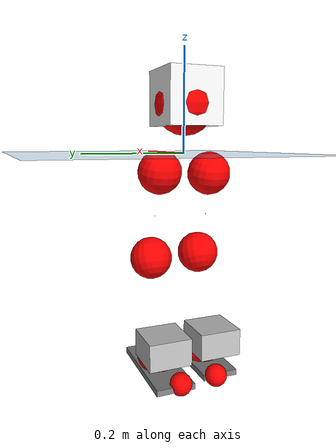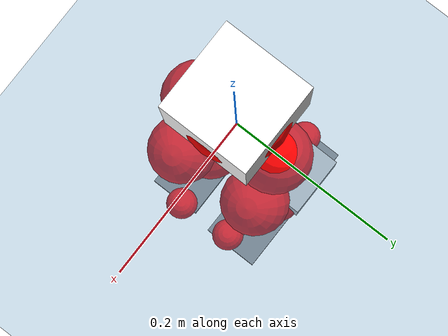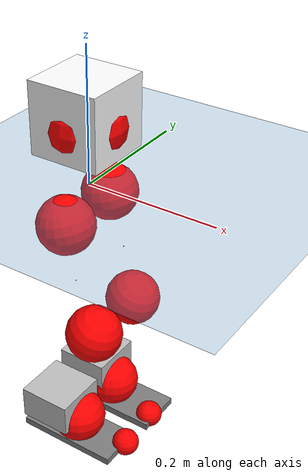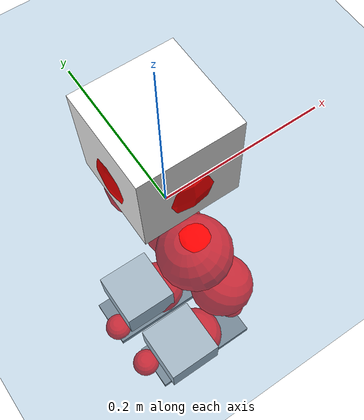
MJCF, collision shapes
<mujoco model="pi_12dof_release_v1">
  <compiler angle="radian" assetdir="assets" balanceinertia="true" inertiafromgeom="false"/>

  <option timestep="0.005" density="1.2" viscosity="2e-05"/>

  <size nkey="1"/>

  <visual>
    <quality shadowsize="8192"/>
    <map shadowclip="0.5"/>
  </visual>

  <default>
    <default class="/">
      <joint armature="0.01" damping="0.01" frictionloss="0.01"/>
      <geom contype="0" conaffinity="0" group="1" solref="-1000 -80"/>
      <site size="0.01 0.005 0.005" group="5"/>
      <general forcelimited="true" biastype="affine" gainprm="20" biasprm="0 -20 -0.5"/>
      <default class="foot">
        <geom size="0.0845 0.036 0.005" type="box" condim="6" group="4" priority="1" friction="0.9 0.2 0.2" solimp="0.015 1 0.005"/>
      </default>
      <default class="reward_collision_sphere">
        <geom group="5" rgba="1 0 0 1"/>
      </default>
    </default>
  </default>

  <asset>
    <texture type="skybox" colorspace="auto" name="//unnamed_texture_0" builtin="gradient" rgb1="0.95 0.95 0.95" rgb2="0.95 0.95 0.95" width="100" height="600"/>
    <texture type="2d" colorspace="auto" name="texplane" builtin="checker" rgb1="0.345 0.575 0.748" rgb2="0.345 0.575 0.748" markrgb="1 1 1" width="512" height="512"/>
    <material name="MatPlane" class="/" texture="texplane" texuniform="true" texrepeat="2 2" specular="0.9"/>
    <mesh name="baselink_1" class="/" file="baselink_1.STL"/>
    <mesh name="r_hip_pitch_link" class="/" file="r_hip_pitch_link.STL"/>
    <mesh name="r_hip_roll_link" class="/" file="r_hip_roll_link.STL"/>
    <mesh name="r_thigh_link" class="/" file="r_thigh_link.STL"/>
    <mesh name="r_calf_link" class="/" file="r_calf_link.STL"/>
    <mesh name="r_ankle_pitch_link" class="/" file="r_ankle_pitch_link.STL"/>
    <mesh name="r_ankle_roll_link" class="/" file="r_ankle_roll_link.STL"/>
    <mesh name="l_hip_pitch_link" class="/" file="l_hip_pitch_link.STL"/>
    <mesh name="l_hip_roll_link" class="/" file="l_hip_roll_link.STL"/>
    <mesh name="l_thigh_link" class="/" file="l_thigh_link.STL"/>
    <mesh name="l_calf_link" class="/" file="l_calf_link.STL"/>
    <mesh name="l_ankle_pitch_link" class="/" file="l_ankle_pitch_link.STL"/>
    <mesh name="l_ankle_roll_link" class="/" file="l_ankle_roll_link.STL"/>
  </asset>

  <worldbody>
    <geom name="floor" class="/" size="100 100 0.125" type="plane" group="0" material="MatPlane"/>
    <light name="toplight_shadow" class="/" pos="0 0 5" dir="0.0990148 0.0990148 -0.990148" type="directional" ambient="0.04 0.04 0.04" diffuse="0.55 0.55 0.55" specular="0.12 0.12 0.12"/>
    <light name="toplight_fill" class="/" pos="0 0 5" dir="0.0990148 0.0990148 -0.990148" type="directional" castshadow="false" ambient="0.04 0.04 0.04" diffuse="0.3 0.3 0.3" specular="0.08 0.08 0.08"/>
    <body name="trunk" pos="-0.0023292 -0.0006725 0.00183261" quat="1 -0.000405432 -0.000347078 -0.000120815">
      <inertial pos="0.00927975 0.00318854 0.0505532" quat="0.686602 0.0111957 0.00963154 0.726883" mass="2.4288" diaginertia="0.0297083 0.000978294 0.0150807"/>
      <joint name="//unnamed_joint_0" type="free"/>
      <geom name="//unnamed_geom_1" class="/" type="mesh" density="0" rgba="1 1 1 1" mesh="baselink_1"/>
      <geom name="//unnamed_geom_2" class="/" size="0.0527922 0.0527922 0.0527922" pos="0 0 0.10252" type="box" rgba="1 1 1 1"/>
      <geom name="//unnamed_geom_3" class="reward_collision_sphere" size="0.0580714" pos="0 0 0.0897049"/>
      <site name="imu" class="/" pos="-0.0220768 -0.00196713 0.0218237" size="0.0105584"/>
      <camera name="track" class="/" pos="0 -1.27807 0" quat="0.707107 0.707107 0 0" mode="trackcom"/>
      <camera name="ego_camera" class="/" pos="0.0935249 0 0.23067" quat="-0.5 -0.5 0.5 0.5"/>
      <body name="r_hip_pitch_link" pos="0.00183459 -0.0120277 -0.0421148" quat="0.992192 -8.03391e-05 -0.124716 5.90383e-05">
        <inertial pos="0.0006431 -0.0337797 -0.00012044" quat="-0.0189823 0.70605 -0.0278856 0.707359" mass="0.472606" diaginertia="0.000351499 1.16229e-05 0.0003077"/>
        <joint name="r_hip_pitch_joint" class="/" pos="0 0 0" axis="0.00344042 -0.99999 0.00289248" range="-1.70525 1.34943" armature="0.0121846" damping="0.0140985" frictionloss="0.00987043"/>
        <geom name="//unnamed_geom_4" class="/" type="mesh" density="0" rgba="0.75294 0.75294 0.75294 1" mesh="r_hip_pitch_link"/>
        <geom name="//unnamed_geom_5" class="/" size="0.000527922 0.000527922 0.000527922" type="box" rgba="0.75294 0.75294 0.75294 1"/>
        <body name="r_hip_roll_link" pos="-1.86463e-05 -0.0411642 0.000897444" quat="0.999998 0.00157402 -0.000824456 -0.000901273">
          <inertial pos="0.000963977 -0.00056709 -0.0783857" quat="0.70219 -0.0843331 -0.0750296 0.702985" mass="0.454599" diaginertia="0.000987353 3.10343e-05 0.000445905"/>
          <joint name="r_hip_roll_joint" class="/" pos="0 0 0" axis="-0.999965 -0.00311737 0.00770657" range="-0.0750489 0.499675" armature="0.0108882" damping="0.0304408" frictionloss="0.00801737"/>
          <geom name="//unnamed_geom_6" class="/" type="mesh" density="0" rgba="0.75294 0.75294 0.75294 1" mesh="r_hip_roll_link"/>
          <geom name="//unnamed_geom_7" class="/" size="0.000527922 0.000527922 0.000527922" type="box" rgba="0.75294 0.75294 0.75294 1"/>
          <geom name="//unnamed_geom_8" class="reward_collision_sphere" size="0.0422337"/>
          <body name="r_thigh_link" pos="-0.00451291 -0.00352819 -0.0855348" quat="0.999999 -0.000499939 0.000862002 0.000780956">
            <inertial pos="0.00118858 0.00394303 -0.0618829" quat="0.7371 0.675784 0.0001314 -0.000261446" mass="0.127461" diaginertia="0.000378314 1.00098e-05 0.000200055"/>
            <joint name="r_thigh_joint" class="/" pos="0 0 0" axis="-0.00505586 -0.00418944 -0.999978" range="-0.27337 0.526556" armature="0.00789617" damping="0" frictionloss="0.0108884"/>
            <geom name="//unnamed_geom_9" class="/" type="mesh" density="0" rgba="0.75294 0.75294 0.75294 1" mesh="r_thigh_link"/>
            <geom name="//unnamed_geom_10" class="/" size="0.000527922 0.000527922 0.000527922" type="box" rgba="0.75294 0.75294 0.75294 1"/>
            <body name="r_calf_link" pos="0.00470883 0.00343764 -0.0898495" quat="0.947662 1.95199e-05 0.319275 -5.38665e-05">
              <inertial pos="8.78877e-05 0.00578414 -0.0886511" quat="0.999571 0.0138421 -0.00881084 0.0242641" mass="0.967202" diaginertia="0.0112554 0.000363581 0.000635559"/>
              <joint name="r_calf_joint" class="/" pos="0 0 0" axis="0.00382653 -0.999967 -0.00713255" stiffness="0.010659" range="-1.6565 0.675258" armature="0.010114" damping="0" frictionloss="0.0113947"/>
              <geom name="//unnamed_geom_11" class="/" type="mesh" density="0" rgba="0.75294 0.75294 0.75294 1" mesh="r_calf_link"/>
              <geom name="//unnamed_geom_12" class="/" size="0.000527922 0.000527922 0.000527922" type="box" rgba="0.75294 0.75294 0.75294 1"/>
              <geom name="//unnamed_geom_13" class="reward_collision_sphere" size="0.0422337"/>
              <body name="r_ankle_pitch_link" pos="-0.00107831 0.000939472 -0.176601" quat="0.979972 -0.00132524 -0.199132 0.000406122">
                <inertial pos="0.00136601 0.000474899 -0.000196221" quat="0.00239382 0.707512 -0.002588 0.706693" mass="0.195175" diaginertia="0.000905495 2.37242e-05 0.000378981"/>
                <joint name="r_ankle_pitch_joint" class="/" pos="0 0 0" axis="-0.00389907 -0.999986 -0.00351224" stiffness="0.00524862" range="-1.36883 0.484287" armature="0.0103195" damping="0.0212634" frictionloss="0.00957543"/>
                <geom name="//unnamed_geom_14" class="/" type="mesh" density="0" rgba="0.75294 0.75294 0.75294 1" mesh="r_ankle_pitch_link"/>
                <geom name="//unnamed_geom_15" class="/" size="0.0411779 0.0422337 0.0263961" type="box" rgba="0.75294 0.75294 0.75294 1"/>
                <body name="r_ankle_roll_link" pos="0.0938048 0.00558485 0.000299401" quat="1 -8.48686e-06 5.66228e-06 8.95061e-06">
                  <inertial pos="-0.0278245 -0.000337311 -0.0178885" quat="0.551731 0.412642 0.448425 0.569416" mass="0.593009" diaginertia="0.00337544 0.000105519 0.000942608"/>
                  <joint name="r_ankle_roll_joint" class="/" pos="0 0 0" axis="-0.999998 0.00163844 -0.00062088" range="-0.16752 0.154386" armature="0.00800669" damping="0" frictionloss="0.0117759"/>
                  <geom name="//unnamed_geom_16" class="/" type="mesh" density="0" rgba="0.75294 0.75294 0.75294 1" mesh="r_ankle_roll_link"/>
                  <geom name="//unnamed_geom_17" class="/" type="mesh" rgba="0.75294 0.75294 0.75294 1" mesh="r_ankle_roll_link"/>
                  <geom name="right_foot" class="foot" size="0.0814056 0.0353074 0.00548004" pos="-0.0635969 0 -0.056386"/>
                  <geom name="//unnamed_geom_19" class="reward_collision_sphere" size="0.0422337" pos="-0.0623499 0 -0.02563"/>
                  <geom name="//unnamed_geom_20" class="reward_collision_sphere" size="0.0211169" pos="0.018705 0.0127807 -0.05126"/>
                  <geom name="//unnamed_geom_21" class="reward_collision_sphere" size="0.0211169" pos="-0.14964 0.0127807 -0.05126"/>
                  <site name="right_foot" class="foot" pos="-0.0635969 0 -0.056386" size="0.0105584"/>
                </body>
              </body>
            </body>
          </body>
        </body>
      </body>
      <body name="l_hip_pitch_link" pos="-0.00359892 0.0163681 -0.0385108" quat="0.992199 2.47985e-05 -0.124667 -6.4697e-05">
        <inertial pos="0.00209578 0.0334794 0.00482983" quat="-0.0357672 0.712711 0.0235301 0.70015" mass="0.429475" diaginertia="0.000334303 1.02127e-05 0.000326001"/>
        <joint name="l_hip_pitch_joint" class="/" pos="0 0 0" axis="-0.000158691 1 -0.000464614" stiffness="0.00323372" range="-1.19276 1.76066" armature="0.0109642" damping="0.00732769" frictionloss="0.011041"/>
        <geom name="//unnamed_geom_22" class="/" type="mesh" density="0" rgba="0.75294 0.75294 0.75294 1" mesh="l_hip_pitch_link"/>
        <geom name="//unnamed_geom_23" class="/" size="0.000527922 0.000527922 0.000527922" type="box" rgba="0.75294 0.75294 0.75294 1"/>
        <body name="l_hip_roll_link" pos="0.00514812 0.0348057 0.000218399" quat="1 -3.90488e-05 6.81355e-05 -0.000610757">
          <inertial pos="0.00377487 0.00204451 -0.0729545" quat="0.700342 -0.0761572 -0.0761851 0.705632" mass="0.45641" diaginertia="0.00109375 2.9585e-05 0.000460691"/>
          <joint name="l_hip_roll_joint" class="/" pos="0 0 0" axis="-0.999878 -0.0154555 0.00236543" range="-0.464769 0.0601367" armature="0.00932769" damping="0" frictionloss="0.0105212"/>
          <geom name="//unnamed_geom_24" class="/" type="mesh" density="0" rgba="0.75294 0.75294 0.75294 1" mesh="l_hip_roll_link"/>
          <geom name="//unnamed_geom_25" class="/" size="0.000527922 0.000527922 0.000527922" type="box" rgba="0.75294 0.75294 0.75294 1"/>
          <geom name="//unnamed_geom_26" class="reward_collision_sphere" size="0.0422337"/>
          <body name="l_thigh_link" pos="0.000968105 0.00125245 -0.0906044" quat="1 -0.000435527 0.00067729 0.000304782">
            <inertial pos="0.000624346 -0.00435578 -0.0631479" quat="0.676451 0.736484 0.000724238 0.00190163" mass="0.122304" diaginertia="0.000351076 8.90028e-06 0.000189047"/>
            <joint name="l_thigh_joint" class="/" pos="0 0 0" axis="0.00189746 0.00265386 -0.999995" stiffness="0.0147627" range="-0.506469 0.303497" armature="0.0114916" damping="0" frictionloss="0.0104052"/>
            <geom name="//unnamed_geom_27" class="/" type="mesh" density="0" rgba="0.75294 0.75294 0.75294 1" mesh="l_thigh_link"/>
            <geom name="//unnamed_geom_28" class="/" size="0.000527922 0.000527922 0.000527922" type="box" rgba="0.75294 0.75294 0.75294 1"/>
            <body name="l_calf_link" pos="-0.00630696 0.00211657 -0.0897414" quat="0.947745 -0.000399398 0.319027 -0.00135218">
              <inertial pos="0.000414934 0.00230479 -0.0844016" quat="0.999408 0.0188471 -0.0287371 0.00188241" mass="0.992953" diaginertia="0.0113216 0.000398932 0.000650242"/>
              <joint name="l_calf_joint" class="/" pos="0 0 0" axis="-0.0123577 0.999919 0.00292814" stiffness="0.0107614" range="-0.637738 1.68826" armature="0.00987" damping="0.0165186" frictionloss="0.0114492"/>
              <geom name="//unnamed_geom_29" class="/" type="mesh" density="0" rgba="0.75294 0.75294 0.75294 1" mesh="l_calf_link"/>
              <geom name="//unnamed_geom_30" class="/" size="0.000527922 0.000527922 0.000527922" type="box" rgba="0.75294 0.75294 0.75294 1"/>
              <geom name="//unnamed_geom_31" class="reward_collision_sphere" size="0.0422337"/>
              <body name="l_ankle_pitch_link" pos="-0.00528497 0.00265843 -0.175291" quat="0.979869 -0.00106746 -0.199637 -0.000118057">
                <inertial pos="0.00632963 -0.000619367 0.00218675" quat="-0.00162066 0.705856 0.00469704 0.708338" mass="0.213168" diaginertia="0.000955995 2.32931e-05 0.000405297"/>
                <joint name="l_ankle_pitch_joint" class="/" pos="0 0 0" axis="0.000402658 0.999999 0.00148911" range="-0.516663 1.31795" armature="0.0109028" damping="0.00837844" frictionloss="0.0112531"/>
                <geom name="//unnamed_geom_32" class="/" type="mesh" density="0" rgba="0.75294 0.75294 0.75294 1" mesh="l_ankle_pitch_link"/>
                <geom name="//unnamed_geom_33" class="/" size="0.0411779 0.0422337 0.0263961" type="box" rgba="0.75294 0.75294 0.75294 1"/>
                <body name="l_ankle_roll_link" pos="0.0972094 -0.00229033 -0.00146547" quat="0.999998 0.00217111 0.000368007 -0.000229876">
                  <inertial pos="-0.0327171 -0.00132282 -0.0166838" quat="0.563627 0.42408 0.439964 0.555799" mass="0.592554" diaginertia="0.00337484 0.000109743 0.000962178"/>
                  <joint name="l_ankle_roll_joint" class="/" pos="0 0 0" axis="-0.999988 0.00272325 -0.0040305" stiffness="0.0211625" range="-0.216198 0.174873" armature="0.0091924" damping="0" frictionloss="0.0111199"/>
                  <geom name="//unnamed_geom_34" class="/" type="mesh" density="0" rgba="0.75294 0.75294 0.75294 1" mesh="l_ankle_roll_link"/>
                  <geom name="//unnamed_geom_35" class="/" type="mesh" rgba="0.75294 0.75294 0.75294 1" mesh="l_ankle_roll_link"/>
                  <geom name="left_foot" class="foot" size="0.0941589 0.0378604 0.00564761" pos="-0.0635969 0 -0.056386"/>
                  <geom name="//unnamed_geom_37" class="reward_collision_sphere" size="0.0422337" pos="-0.0623499 0 -0.02563"/>
                  <geom name="//unnamed_geom_38" class="reward_collision_sphere" size="0.0211169" pos="0.018705 -0.0127807 -0.05126"/>
                  <geom name="//unnamed_geom_39" class="reward_collision_sphere" size="0.0211169" pos="-0.14964 -0.0127807 -0.05126"/>
                  <site name="left_foot" class="foot" pos="-0.0635969 0 -0.056386" size="0.0105584"/>
                </body>
              </body>
            </body>
          </body>
        </body>
      </body>
    </body>
  </worldbody>

  <contact>
    <pair class="/" geom1="floor" geom2="right_foot" name="//unnamed_contact_1"/>
    <pair class="/" geom1="floor" geom2="left_foot" name="//unnamed_contact_0"/>
  </contact>

  <actuator>
    <general name="r_hip_pitch_joint" class="/" joint="r_hip_pitch_joint" forcerange="-20.1889 20.1889" gainprm="24.5394" biasprm="0 -24.5394 -0.550813"/>
    <general name="r_hip_roll_joint" class="/" joint="r_hip_roll_joint" forcerange="-21.6485 21.6485" gainprm="24.5394" biasprm="0 -24.5394 -0.550813"/>
    <general name="r_thigh_joint" class="/" joint="r_thigh_joint" forcerange="-23.5754 23.5754" gainprm="24.5394" biasprm="0 -24.5394 -0.550813"/>
    <general name="r_calf_joint" class="/" joint="r_calf_joint" forcerange="-18.6807 18.6807" gainprm="24.5394" biasprm="0 -24.5394 -0.550813"/>
    <general name="r_ankle_pitch_joint" class="/" joint="r_ankle_pitch_joint" forcerange="-24.0349 24.0349" gainprm="24.5394" biasprm="0 -24.5394 -0.550813"/>
    <general name="r_ankle_roll_joint" class="/" joint="r_ankle_roll_joint" forcerange="-20.4111 20.4111" gainprm="24.5394" biasprm="0 -24.5394 -0.550813"/>
    <general name="l_hip_pitch_joint" class="/" joint="l_hip_pitch_joint" forcerange="-23.9704 23.9704" gainprm="24.5394" biasprm="0 -24.5394 -0.550813"/>
    <general name="l_hip_roll_joint" class="/" joint="l_hip_roll_joint" forcerange="-26.2771 26.2771" gainprm="24.5394" biasprm="0 -24.5394 -0.550813"/>
    <general name="l_thigh_joint" class="/" joint="l_thigh_joint" forcerange="-20.555 20.555" gainprm="24.5394" biasprm="0 -24.5394 -0.550813"/>
    <general name="l_calf_joint" class="/" joint="l_calf_joint" forcerange="-22.2889 22.2889" gainprm="24.5394" biasprm="0 -24.5394 -0.550813"/>
    <general name="l_ankle_pitch_joint" class="/" joint="l_ankle_pitch_joint" forcerange="-21.0671 21.0671" gainprm="24.5394" biasprm="0 -24.5394 -0.550813"/>
    <general name="l_ankle_roll_joint" class="/" joint="l_ankle_roll_joint" forcerange="-20.0145 20.0145" gainprm="24.5394" biasprm="0 -24.5394 -0.550813"/>
  </actuator>

  <sensor>
    <gyro site="imu" name="imu_angular_velocity"/>
    <velocimeter site="imu" name="imu_linear_velocity"/>
    <framelinvel objtype="site" objname="left_foot" name="left_foot_global_linear_velocity"/>
    <framelinvel objtype="site" objname="right_foot" name="right_foot_global_linear_velocity"/>
  </sensor>

  <keyframe>
    <key name="home" qpos="0 0 0.291 1 0 0 0 0.4 0 0 -0.8 0.4 0 -0.4 0 0 0.8 -0.4 0"/>
  </keyframe>
</mujoco>
